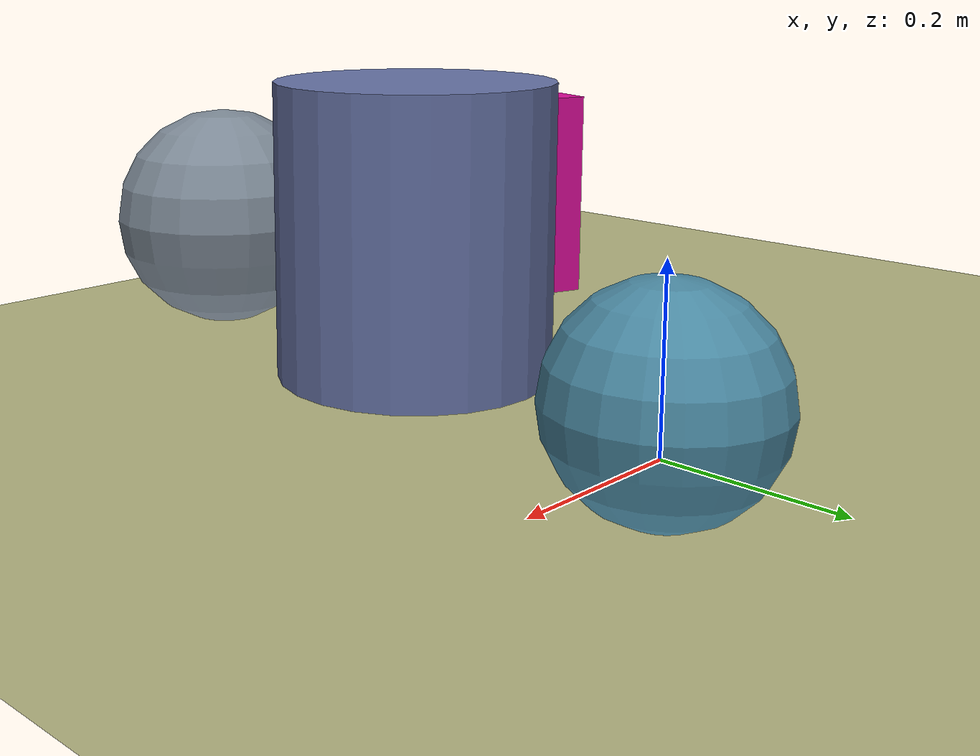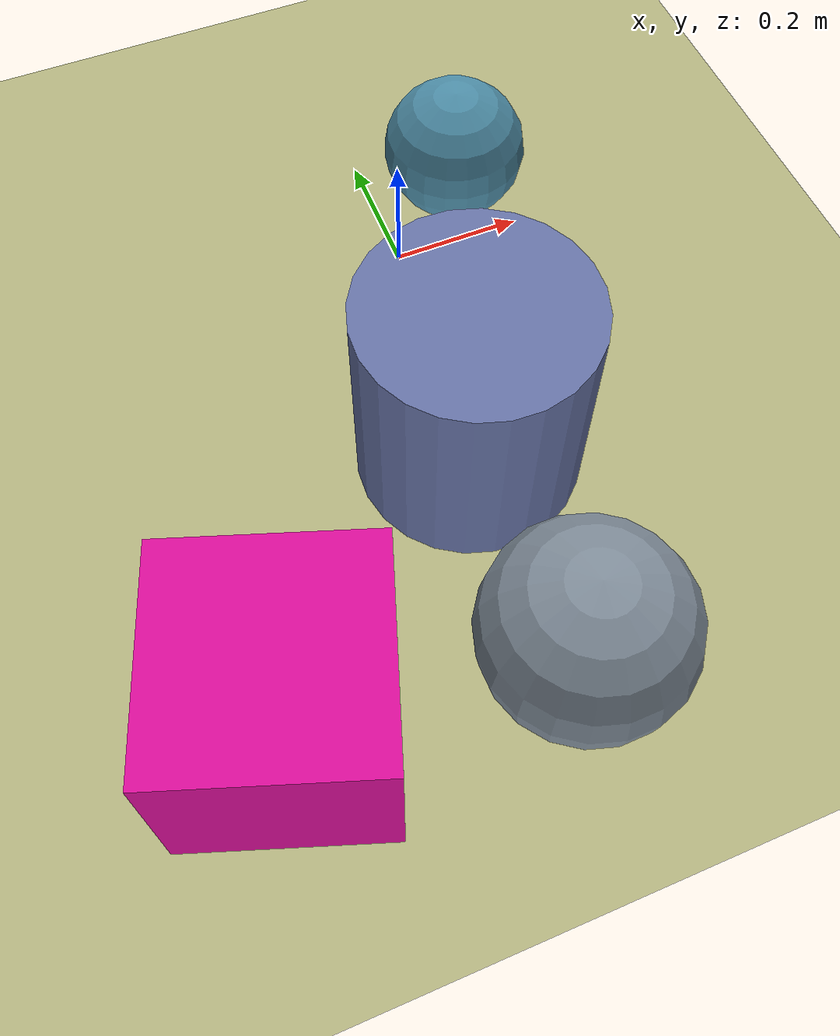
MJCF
<mujoco>
   <asset>
<texture type="skybox" builtin="gradient" rgb1="0.3 0.3 0.8" rgb2="0.4 0.1 0.8" width="256" height="256"/>
<texture name="checker_0" builtin="checker" rgb1="1.0 0.1 0.9" rgb2="0.7 0.0 0.3" width="200" height="200"/>
<texture name="gradient_1" builtin="gradient" rgb1="0.1 0.8 0.3" rgb2="0.7 0.1 1.0" width="200" height="200"/>
<texture name="checker_2" builtin="checker" rgb1="0.7 0.4 0.9" rgb2="0.3 0.7 0.3" width="200" height="200"/>
<texture name="checker_3" builtin="checker" rgb1="0.0 0.3 0.7" rgb2="0.6 0.8 0.6" width="200" height="200"/><material name="checker_0_mat" reflectance="0" texrepeat="6 6" texture="checker_0" texuniform="false" />
<material name="gradient_1_mat" reflectance="0" texture="gradient_1" texuniform="true"/>
<material name="checker_2_mat" reflectance="0" texrepeat="8 8" texture="checker_2" texuniform="false" />
<material name="checker_3_mat" reflectance="0" texrepeat="7 7" texture="checker_3" texuniform="false" />
   </asset>

   <worldbody>
      <light diffuse=".9 .9 .9" pos="0 0 3" dir="0 0 -1"/>
     <geom type="plane" size="1 1 0.1" rgba="0.7 0.7 0.5 1"/>
<geom type="box" pos="-0.41 -0.66 0.14" size="0.14 0.14 0.14" material="checker_0_mat" euler="0 0 71" />
<geom type="cylinder" pos="-0.04 -0.37 0.17" size="0.16 0.17 0.17" material="gradient_1_mat" euler="0 0 50" />
<geom type="sphere" pos="-0.04 -0.72 0.14" size="0.14 0.14 0.14" material="checker_2_mat" euler="0 0 10" />
<geom type="sphere" pos="0.13 0.09 0.11" size="0.11 0.11 0.11" material="checker_3_mat" euler="0 0 42" /><camera euler="60 0 180" fovy="60" name="camera1" pos="-0.2 -1.5 1"></camera>   </worldbody>
</mujoco>
